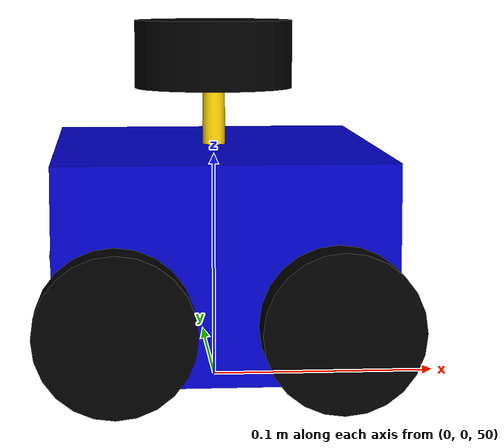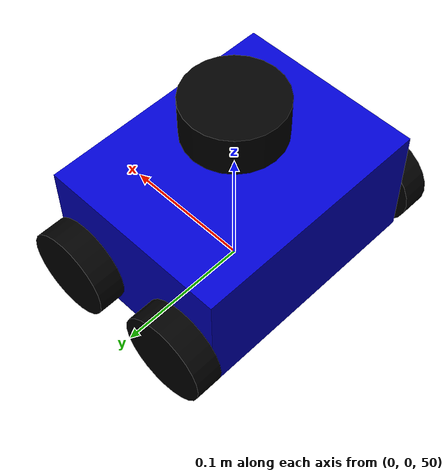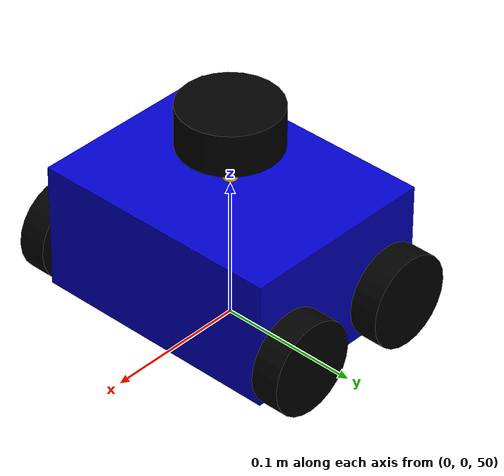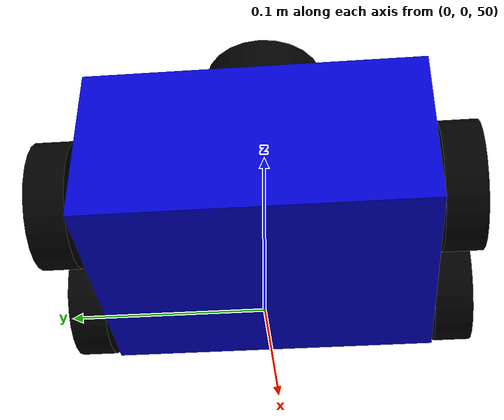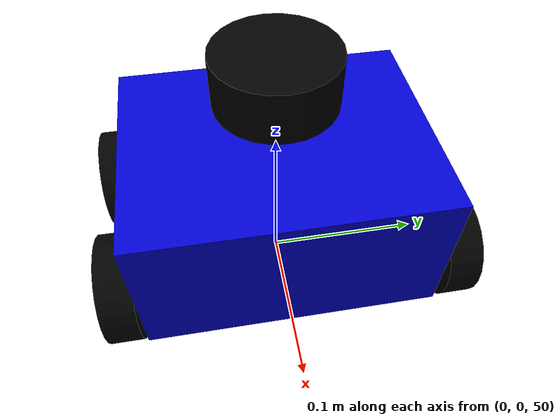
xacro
<?xml version="1.0"?>
<robot name="pi_car" xmlns:xacro="http://ros.org/wiki/xacro">

  <xacro:property name="base_length" value="0.14"/>
  <xacro:property name="base_width"  value="0.18"/>
  <xacro:property name="base_height" value="0.09"/>

  <xacro:property name="wheel_radius" value="0.0325"/>
  <xacro:property name="wheel_width"  value="0.02"/>
  <xacro:property name="wheel_off_z"  value="-0.02"/>

  <xacro:property name="wheel_off_x"  value="0.045"/>

  <xacro:property name="lidar_radius" value="0.035"/>
  <xacro:property name="lidar_height" value="0.03"/>
  <xacro:property name="lidar_off_x"  value="0.0"/>

  <xacro:property name="standoff_height" value="0.085"/>

  <material name="blue"> <color rgba="0 0 0.8 1"/> </material>
  <material name="black"> <color rgba="0 0 0 1"/> </material>
  <material name="white"> <color rgba="1 1 1 1"/> </material>
  <material name="gold"> <color rgba="1 0.84 0 1"/> </material>

  <link name="base_footprint"/>

  <joint name="base_joint" type="fixed">
    <parent link="base_footprint"/>
    <child link="base_link"/>
    <origin xyz="0 0 50" rpy="0 0 0"/>
  </joint>

  <link name="base_link">
    <visual>
      <origin xyz="0 0 0.06" rpy="0 0 0"/>
      <geometry>
        <box size="${base_length} ${base_width} ${base_height}"/>
      </geometry>
      <material name="blue"/>
    </visual>
    <collision>
      <origin xyz="0 0 0" rpy="0 0 0"/>
      <geometry>
        <box size="${base_length} ${base_width} ${base_height}"/>
      </geometry>
    </collision>
  </link>

  <xacro:macro name="wheel" params="prefix reflect_y x_offset">
    <link name="${prefix}_wheel_link">
      <visual>
        <origin xyz="0 0 0.06" rpy="${pi/2} 0 0"/>
        <geometry>
          <cylinder radius="${wheel_radius}" length="${wheel_width}"/>
        </geometry>
        <material name="black"/>
      </visual>
      <collision>
        <origin xyz="0 0 0" rpy="${pi/2} 0 0"/>
        <geometry>
          <cylinder radius="${wheel_radius}" length="${wheel_width}"/>
        </geometry>
      </collision>
    </link>

    <joint name="${prefix}_wheel_joint" type="continuous">
      <parent link="base_link"/>
      <child link="${prefix}_wheel_link"/>
      <origin xyz="${x_offset} ${reflect_y*(base_width/2 + wheel_width/2)} ${wheel_off_z}" rpy="0 0 0"/>
      <axis xyz="0 1 0"/>
    </joint>
  </xacro:macro>

  <xacro:wheel prefix="front_left"  reflect_y="1"  x_offset="${wheel_off_x}"/>
  <xacro:wheel prefix="front_right" reflect_y="-1" x_offset="${wheel_off_x}"/>
  <xacro:wheel prefix="rear_left"   reflect_y="1"  x_offset="-${wheel_off_x}"/>
  <xacro:wheel prefix="rear_right"  reflect_y="-1" x_offset="-${wheel_off_x}"/>

  <link name="standoff_link">
    <visual>
      <origin xyz="0 0 0" rpy="0 0 0"/>
      <geometry>
        <cylinder radius="0.005" length="${standoff_height}"/>
      </geometry>
      <material name="gold"/>
    </visual>
  </link>

  <joint name="standoff_joint" type="fixed">
    <parent link="base_link"/>
    <child link="standoff_link"/>
    <origin xyz="${lidar_off_x} 0 ${base_height/2 + standoff_height/2}" rpy="0 0 0"/>
  </joint>

  <link name="laser">
    <visual>
      <origin xyz="0 0 0" rpy="0 0 0"/>
      <geometry>
        <cylinder radius="${lidar_radius}" length="${lidar_height}"/>
      </geometry>
      <material name="black"/>
    </visual>
  </link>

  <joint name="laser_joint" type="fixed">
    <parent link="base_link"/>
    <child link="laser"/>
    <origin xyz="${lidar_off_x} 0 ${base_height/2 + standoff_height + lidar_height/2}" rpy="0 0 0"/>
  </joint>

</robot>
